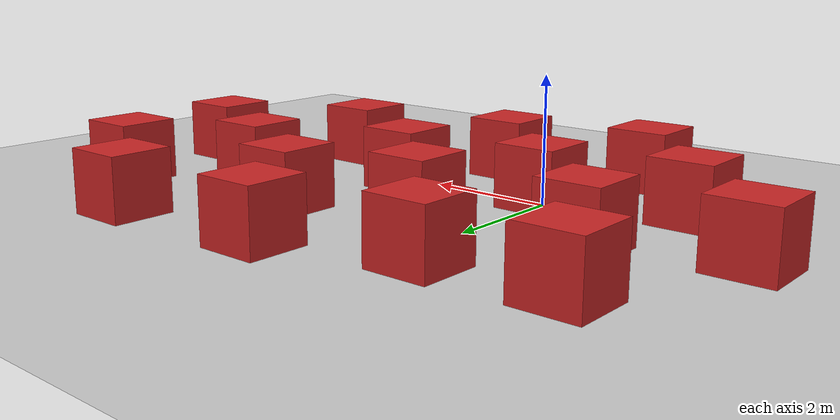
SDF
<sdf version="1.7">
 <world name="default">
  <light name="sun" type="directional">
   <pose>0 0 10 0 -0 0</pose>
   <diffuse>0.8 0.8 0.8 1</diffuse>
   <specular>0.2 0.2 0.2 1</specular>
   <attenuation>
    <range>1000</range>
    <constant>0.9</constant>
    <linear>0.01</linear>
    <quadratic>0.001</quadratic>
   </attenuation>
   <direction>-0.5 0.1 -0.9</direction>
   <spot><inner_angle>0</inner_angle><outer_angle>0</outer_angle><falloff>0</falloff></spot>
  </light>
  <model name="ground_plane">
   <static>1</static>
   <static>1</static>
   <link name="link">
    <collision name="collision">
     <geometry><plane><normal>0 0 1</normal><size>100 100</size></plane></geometry>
     <surface><friction><ode><mu>100</mu><mu2>50</mu2></ode></friction></surface>
    </collision>
    <visual name="visual">
     <cast_shadows>0</cast_shadows>
     <geometry><plane><normal>0 0 1</normal><size>100 100</size></plane></geometry>
     <material>
      <script><uri>file://media/materials/scripts/gazebo.material</uri><name>Gazebo/Grey</name></script>
     </material>
    </visual>
   </link>
  </model>
  <gravity>0 0 -9.8</gravity>
  <magnetic_field>6e-06 2.3e-05 -4.2e-05</magnetic_field>
  <atmosphere type="adiabatic"/>
  <physics type="ode">
   <max_step_size>0.001</max_step_size>
   <real_time_factor>1</real_time_factor>
   <real_time_update_rate>1000</real_time_update_rate>
  </physics>
  <scene><ambient>0.4 0.4 0.4 1</ambient><background>0.7 0.7 0.7 1</background><shadows>1</shadows></scene>
  <audio><device>default</device></audio>
  <spherical_coordinates>
   <surface_model>EARTH_WGS84</surface_model>
   <latitude_deg>0</latitude_deg>
   <longitude_deg>0</longitude_deg>
   <elevation>0</elevation>
   <heading_deg>0</heading_deg>
  </spherical_coordinates>
  <model name="unit_box">
   <static>1</static>
   <pose>-0.008144 0.084205 0.5 0 -0 0</pose>
   <link name="link">
    <inertial>
     <mass>1</mass>
     <inertia>
      <ixx>0.166667</ixx>
      <ixy>0</ixy>
      <ixz>0</ixz>
      <iyy>0.166667</iyy>
      <iyz>0</iyz>
      <izz>0.166667</izz>
     </inertia>
    </inertial>
    <collision name="collision"><geometry><box><size>1 1 1</size></box></geometry></collision>
    <visual name="visual">
     <geometry><box><size>1 1 1</size></box></geometry>
     <material>
      <script><name>Gazebo/Red</name><uri>file://media/materials/scripts/gazebo.material</uri></script>
     </material>
    </visual>
   </link>
  </model>
  <model name="unit_box_0">
   <static>1</static>
   <pose>-2.1521 -0.548694 0.5 -0 -0 -0</pose>
   <link name="link">
    <inertial>
     <mass>1</mass>
     <inertia>
      <ixx>0.166667</ixx>
      <ixy>0</ixy>
      <ixz>0</ixz>
      <iyy>0.166667</iyy>
      <iyz>0</iyz>
      <izz>0.166667</izz>
     </inertia>
    </inertial>
    <collision name="collision"><geometry><box><size>1 1 1</size></box></geometry></collision>
    <visual name="visual">
     <geometry><box><size>1 1 1</size></box></geometry>
     <material>
      <script><name>Gazebo/Red</name><uri>file://media/materials/scripts/gazebo.material</uri></script>
     </material>
    </visual>
   </link>
  </model>
  <model name="unit_box_1">
   <static>1</static>
   <pose>1.59553 -1.44725 0.5 0 -0 0</pose>
   <link name="link">
    <inertial>
     <mass>1</mass>
     <inertia>
      <ixx>0.166667</ixx>
      <ixy>0</ixy>
      <ixz>0</ixz>
      <iyy>0.166667</iyy>
      <iyz>0</iyz>
      <izz>0.166667</izz>
     </inertia>
    </inertial>
    <collision name="collision"><geometry><box><size>1 1 1</size></box></geometry></collision>
    <visual name="visual">
     <geometry><box><size>1 1 1</size></box></geometry>
     <material>
      <script><name>Gazebo/Red</name><uri>file://media/materials/scripts/gazebo.material</uri></script>
     </material>
    </visual>
   </link>
  </model>
  <model name="unit_box_2">
   <static>1</static>
   <pose>2.37975 0.395694 0.5 0 -0 0</pose>
   <link name="link">
    <inertial>
     <mass>1</mass>
     <inertia>
      <ixx>0.166667</ixx>
      <ixy>0</ixy>
      <ixz>0</ixz>
      <iyy>0.166667</iyy>
      <iyz>0</iyz>
      <izz>0.166667</izz>
     </inertia>
    </inertial>
    <collision name="collision"><geometry><box><size>1 1 1</size></box></geometry></collision>
    <visual name="visual">
     <geometry><box><size>1 1 1</size></box></geometry>
     <material>
      <script><name>Gazebo/Red</name><uri>file://media/materials/scripts/gazebo.material</uri></script>
     </material>
    </visual>
   </link>
  </model>
  <model name="unit_box_3">
   <static>1</static>
   <pose>-0.661643 -2.11698 0.5 0 -0 0</pose>
   <link name="link">
    <inertial>
     <mass>1</mass>
     <inertia>
      <ixx>0.166667</ixx>
      <ixy>0</ixy>
      <ixz>0</ixz>
      <iyy>0.166667</iyy>
      <iyz>0</iyz>
      <izz>0.166667</izz>
     </inertia>
    </inertial>
    <collision name="collision"><geometry><box><size>1 1 1</size></box></geometry></collision>
    <visual name="visual">
     <geometry><box><size>1 1 1</size></box></geometry>
     <material>
      <script><name>Gazebo/Red</name><uri>file://media/materials/scripts/gazebo.material</uri></script>
     </material>
    </visual>
   </link>
  </model>
  <model name="unit_box_3_clone_1">
   <static>1</static>
   <pose>4.36421 -0.759349 0.5 0 -0 0</pose>
   <link name="link">
    <inertial>
     <mass>1</mass>
     <inertia>
      <ixx>0.166667</ixx>
      <ixy>0</ixy>
      <ixz>0</ixz>
      <iyy>0.166667</iyy>
      <iyz>0</iyz>
      <izz>0.166667</izz>
     </inertia>
    </inertial>
    <collision name="collision"><geometry><box><size>1 1 1</size></box></geometry></collision>
    <visual name="visual">
     <geometry><box><size>1 1 1</size></box></geometry>
     <material>
      <script><name>Gazebo/Red</name><uri>file://media/materials/scripts/gazebo.material</uri></script>
     </material>
    </visual>
   </link>
  </model>
  <model name="unit_box_3_clone_2">
   <static>1</static>
   <pose>2.82557 2.6478 0.5 0 -0 0</pose>
   <link name="link">
    <inertial>
     <mass>1</mass>
     <inertia>
      <ixx>0.166667</ixx>
      <ixy>0</ixy>
      <ixz>0</ixz>
      <iyy>0.166667</iyy>
      <iyz>0</iyz>
      <izz>0.166667</izz>
     </inertia>
    </inertial>
    <collision name="collision"><geometry><box><size>1 1 1</size></box></geometry></collision>
    <visual name="visual">
     <geometry><box><size>1 1 1</size></box></geometry>
     <material>
      <script><name>Gazebo/Red</name><uri>file://media/materials/scripts/gazebo.material</uri></script>
     </material>
    </visual>
   </link>
  </model>
  <model name="unit_box_3_clone_3">
   <static>1</static>
   <pose>-1.62496 1.52819 0.5 0 -0 0</pose>
   <link name="link">
    <inertial>
     <mass>1</mass>
     <inertia>
      <ixx>0.166667</ixx>
      <ixy>0</ixy>
      <ixz>0</ixz>
      <iyy>0.166667</iyy>
      <iyz>0</iyz>
      <izz>0.166667</izz>
     </inertia>
    </inertial>
    <collision name="collision"><geometry><box><size>1 1 1</size></box></geometry></collision>
    <visual name="visual">
     <geometry><box><size>1 1 1</size></box></geometry>
     <material>
      <script><name>Gazebo/Red</name><uri>file://media/materials/scripts/gazebo.material</uri></script>
     </material>
    </visual>
   </link>
  </model>
  <model name="unit_box_3_clone_4">
   <static>1</static>
   <pose>0.983576 1.80624 0.5 0 -0 0</pose>
   <link name="link">
    <inertial>
     <mass>1</mass>
     <inertia>
      <ixx>0.166667</ixx>
      <ixy>0</ixy>
      <ixz>0</ixz>
      <iyy>0.166667</iyy>
      <iyz>0</iyz>
      <izz>0.166667</izz>
     </inertia>
    </inertial>
    <collision name="collision"><geometry><box><size>1 1 1</size></box></geometry></collision>
    <visual name="visual">
     <geometry><box><size>1 1 1</size></box></geometry>
     <material>
      <script><name>Gazebo/Red</name><uri>file://media/materials/scripts/gazebo.material</uri></script>
     </material>
    </visual>
   </link>
  </model>
  <model name="unit_box_3_clone_5">
   <static>1</static>
   <pose>4.65356 1.60722 0.5 0 -0 0</pose>
   <link name="link">
    <inertial>
     <mass>1</mass>
     <inertia>
      <ixx>0.166667</ixx>
      <ixy>0</ixy>
      <ixz>0</ixz>
      <iyy>0.166667</iyy>
      <iyz>0</iyz>
      <izz>0.166667</izz>
     </inertia>
    </inertial>
    <collision name="collision"><geometry><box><size>1 1 1</size></box></geometry></collision>
    <visual name="visual">
     <geometry><box><size>1 1 1</size></box></geometry>
     <material>
      <script><name>Gazebo/Red</name><uri>file://media/materials/scripts/gazebo.material</uri></script>
     </material>
    </visual>
   </link>
  </model>
  <model name="unit_box_3_clone_6">
   <static>1</static>
   <pose>6.28847 2.99322 0.5 -0 -0 -0</pose>
   <link name="link">
    <inertial>
     <mass>1</mass>
     <inertia>
      <ixx>0.166667</ixx>
      <ixy>0</ixy>
      <ixz>0</ixz>
      <iyy>0.166667</iyy>
      <iyz>0</iyz>
      <izz>0.166667</izz>
     </inertia>
    </inertial>
    <collision name="collision"><geometry><box><size>1 1 1</size></box></geometry></collision>
    <visual name="visual">
     <geometry><box><size>1 1 1</size></box></geometry>
     <material>
      <script><name>Gazebo/Red</name><uri>file://media/materials/scripts/gazebo.material</uri></script>
     </material>
    </visual>
   </link>
  </model>
  <model name="unit_box_3_clone_7">
   <static>1</static>
   <pose>6.50766 0.660477 0.5 -0 -0 -0</pose>
   <link name="link">
    <inertial>
     <mass>1</mass>
     <inertia>
      <ixx>0.166667</ixx>
      <ixy>0</ixy>
      <ixz>0</ixz>
      <iyy>0.166667</iyy>
      <iyz>0</iyz>
      <izz>0.166667</izz>
     </inertia>
    </inertial>
    <collision name="collision"><geometry><box><size>1 1 1</size></box></geometry></collision>
    <visual name="visual">
     <geometry><box><size>1 1 1</size></box></geometry>
     <material>
      <script><name>Gazebo/Red</name><uri>file://media/materials/scripts/gazebo.material</uri></script>
     </material>
    </visual>
   </link>
  </model>
  <model name="unit_box_3_clone_9">
   <static>1</static>
   <pose>-3.65227 0.954344 0.5 0 -0 0</pose>
   <link name="link">
    <inertial>
     <mass>1</mass>
     <inertia>
      <ixx>0.166667</ixx>
      <ixy>0</ixy>
      <ixz>0</ixz>
      <iyy>0.166667</iyy>
      <iyz>0</iyz>
      <izz>0.166667</izz>
     </inertia>
    </inertial>
    <collision name="collision"><geometry><box><size>1 1 1</size></box></geometry></collision>
    <visual name="visual">
     <geometry><box><size>1 1 1</size></box></geometry>
     <material>
      <script><name>Gazebo/Red</name><uri>file://media/materials/scripts/gazebo.material</uri></script>
     </material>
    </visual>
   </link>
  </model>
  <model name="unit_box_3_clone_10">
   <static>1</static>
   <pose>-2.53072 3.4164 0.5 0 -0 0</pose>
   <link name="link">
    <inertial>
     <mass>1</mass>
     <inertia>
      <ixx>0.166667</ixx>
      <ixy>0</ixy>
      <ixz>0</ixz>
      <iyy>0.166667</iyy>
      <iyz>0</iyz>
      <izz>0.166667</izz>
     </inertia>
    </inertial>
    <collision name="collision"><geometry><box><size>1 1 1</size></box></geometry></collision>
    <visual name="visual">
     <geometry><box><size>1 1 1</size></box></geometry>
     <material>
      <script><name>Gazebo/Red</name><uri>file://media/materials/scripts/gazebo.material</uri></script>
     </material>
    </visual>
   </link>
  </model>
  <model name="unit_box_3_clone_11">
   <static>1</static>
   <pose>-0.495844 3.53699 0.5 -0 -0 -0</pose>
   <link name="link">
    <inertial>
     <mass>1</mass>
     <inertia>
      <ixx>0.166667</ixx>
      <ixy>0</ixy>
      <ixz>0</ixz>
      <iyy>0.166667</iyy>
      <iyz>0</iyz>
      <izz>0.166667</izz>
     </inertia>
    </inertial>
    <collision name="collision"><geometry><box><size>1 1 1</size></box></geometry></collision>
    <visual name="visual">
     <geometry><box><size>1 1 1</size></box></geometry>
     <material>
      <script><name>Gazebo/Red</name><uri>file://media/materials/scripts/gazebo.material</uri></script>
     </material>
    </visual>
   </link>
  </model>
  <model name="unit_box_3_clone_12">
   <static>1</static>
   <pose>1.71121 4.29739 0.5 0 -0 0</pose>
   <link name="link">
    <inertial>
     <mass>1</mass>
     <inertia>
      <ixx>0.166667</ixx>
      <ixy>0</ixy>
      <ixz>0</ixz>
      <iyy>0.166667</iyy>
      <iyz>0</iyz>
      <izz>0.166667</izz>
     </inertia>
    </inertial>
    <collision name="collision"><geometry><box><size>1 1 1</size></box></geometry></collision>
    <visual name="visual">
     <geometry><box><size>1 1 1</size></box></geometry>
     <material>
      <script><name>Gazebo/Red</name><uri>file://media/materials/scripts/gazebo.material</uri></script>
     </material>
    </visual>
   </link>
  </model>
  <model name="unit_box_3_clone_13">
   <static>1</static>
   <pose>4.41361 4.45624 0.5 -0 -0 -0</pose>
   <link name="link">
    <inertial>
     <mass>1</mass>
     <inertia>
      <ixx>0.166667</ixx>
      <ixy>0</ixy>
      <ixz>0</ixz>
      <iyy>0.166667</iyy>
      <iyz>0</iyz>
      <izz>0.166667</izz>
     </inertia>
    </inertial>
    <collision name="collision"><geometry><box><size>1 1 1</size></box></geometry></collision>
    <visual name="visual">
     <geometry><box><size>1 1 1</size></box></geometry>
     <material>
      <script><name>Gazebo/Red</name><uri>file://media/materials/scripts/gazebo.material</uri></script>
     </material>
    </visual>
   </link>
  </model>
 </world>
</sdf>
